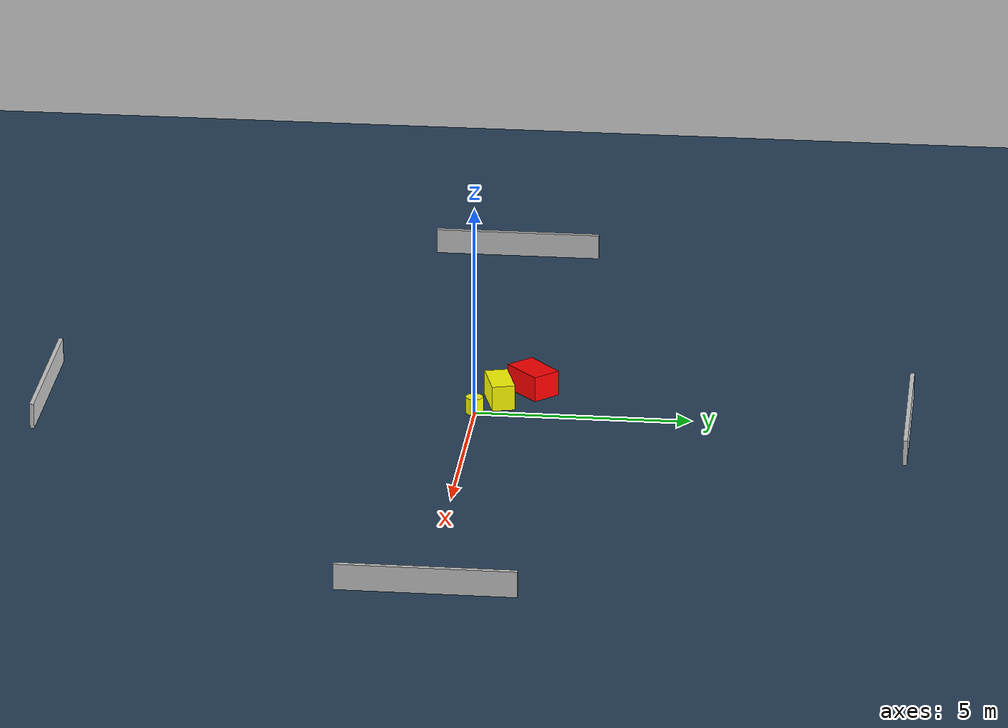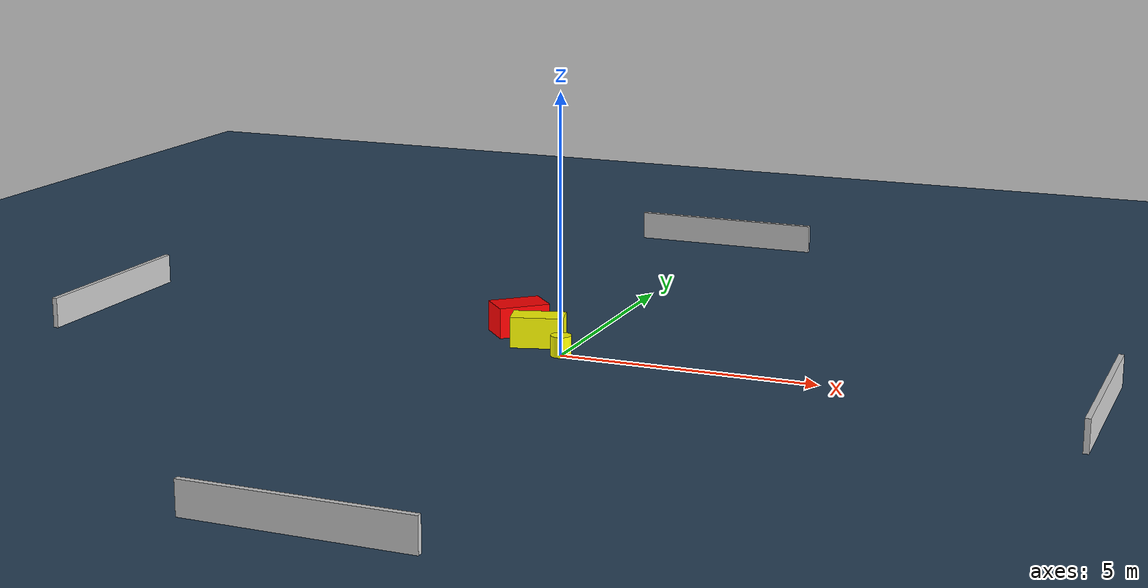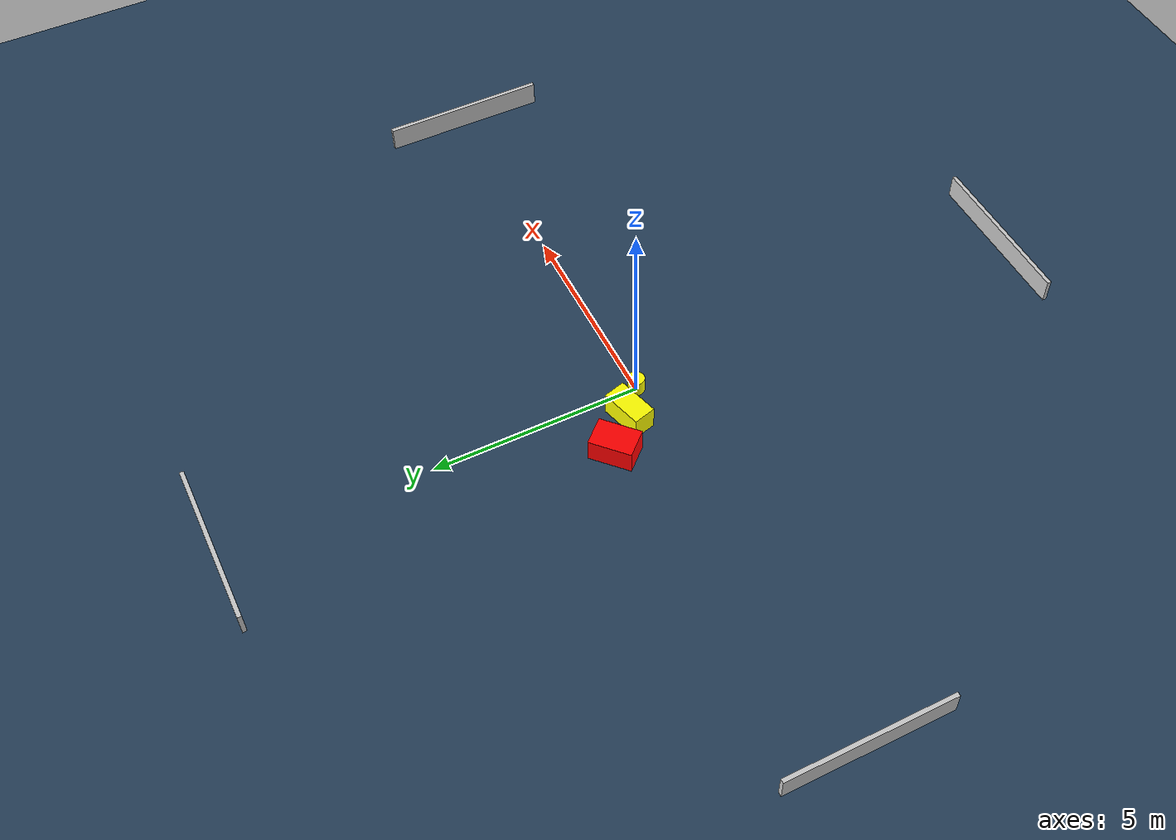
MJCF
<?xml version="1.0" ?>
<mujoco model="generated_environment">
  <option timestep="0.01" integrator="RK4" cone="elliptic"/>
  <default>
    <geom density="1"/>
  </default>
  <asset>
    <texture builtin="gradient" height="3072" name="skybox" rgb1="0.3 0.5 0.7" rgb2="0 0 0" type="skybox" width="512"/>
    <texture builtin="checker" height="300" name="groundplane" rgb1="0.2 0.3 0.4" rgb2="0.1 0.2 0.3" type="2d" width="300"/>
    <material name="groundplane" reflectance="0.2" texrepeat="5 5" texture="groundplane"/>
  </asset>
  <worldbody>
    <light dir="0 0 -1" directional="true" pos="0 0 1.5"/>
    <geom condim="3" friction="0.5 0.005 0.001" material="groundplane" name="floor" pos="0 0 0" size="0 0 0.05" type="plane"/>
    <body name="walls">
      <geom name="wall_1" condim="4" pos="-10.0 0.0 0.3" rgba="0.800000011920929 0.800000011920929 0.800000011920929 1.0" size="0.05 2.0 0.3" type="box"/>
      <geom name="wall_2" condim="4" pos="10.0 0.0 0.3" rgba="0.800000011920929 0.800000011920929 0.800000011920929 1.0" size="0.05 2.0 0.3" type="box"/>
      <geom name="wall_3" condim="4" pos="0.0 -10.0 0.3" rgba="0.800000011920929 0.800000011920929 0.800000011920929 1.0" size="2.0 0.05 0.3" type="box"/>
      <geom name="wall_4" condim="4" pos="0.0 10.0 0.3" rgba="0.800000011920929 0.800000011920929 0.800000011920929 1.0" size="2.0 0.05 0.3" type="box"/>
    </body>
    <body name="robot">
      <joint name="joint_x" type="slide" pos="0 0 0" axis="1 0 0"/>
      <joint name="joint_y" type="slide" pos="0 0 0" axis="0 1 0"/>
      <geom name="robot" type="cylinder" pos="0.0 0.0 0.2" size="0.2 0.2 0.0" mass="5.0" friction="1.0 0.005 0.0001" condim="4" rgba="1.0 1.0 0.0 1.0"/>
    </body>
    <body name="obstacle_1_movable">
      <geom name="obstacle_1_movable" condim="4" pos="-0.6826350390552738 0.5127027871823802 0.3" euler="0 0 285.8602394541234" friction="0.0 0.005 0.001" rgba="1.0 1.0 0.0 1.0" size="0.26968721963838554 0.5107522154804159 0.3" type="box" mass="0.1"/>
      <joint type="free"/>
    </body>
    <body name="obstacle_2_static">
      <geom name="obstacle_2_static" condim="4" pos="-1.3962780615814672 1.224391986233442 0.3" euler="0 0 312.9093671454108" friction="0.0 0.005 0.001" rgba="1.0 0.0 0.0 1.0" size="0.34782261253730523 0.5143852452209037 0.3" type="box"/>
    </body>
  </worldbody>
  <actuator>
    <motor name="actuator_x" joint="joint_x" gear="1" ctrlrange="-1 1"/>
    <motor name="actuator_y" joint="joint_y" gear="1" ctrlrange="-1 1"/>
  </actuator>
</mujoco>
